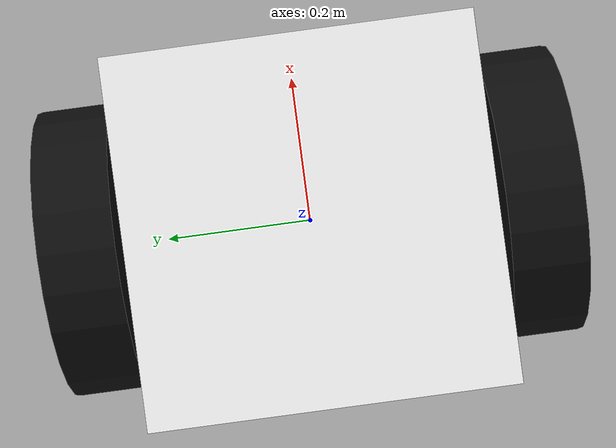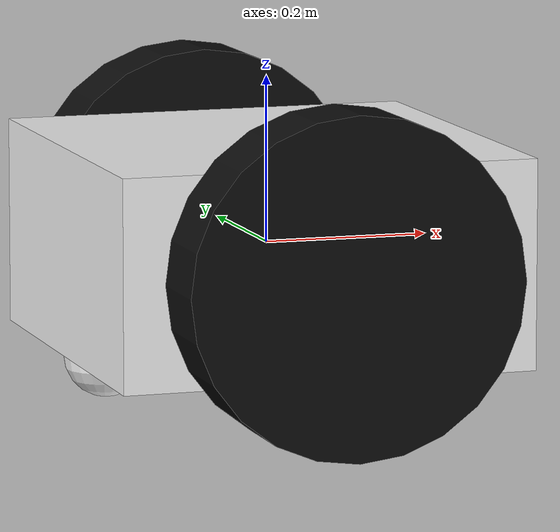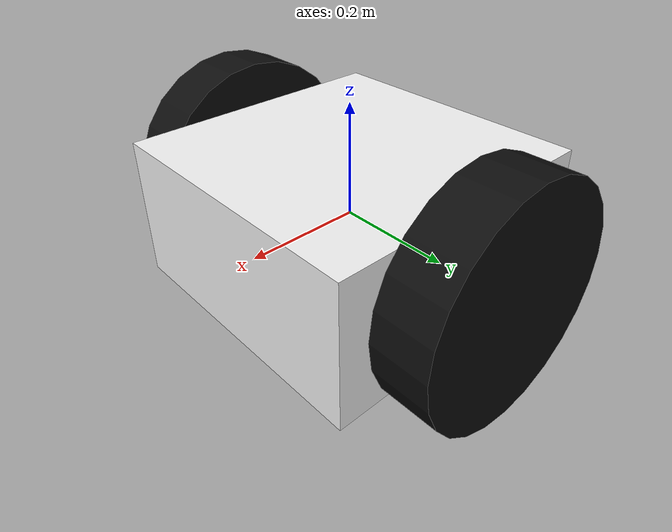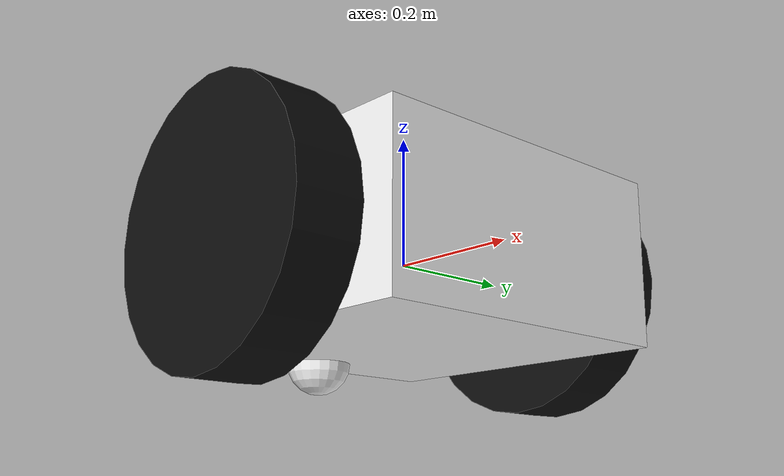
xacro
<?xml version="1.0"?>
<robot name="two_wheel" xmlns:xacro="http://ros.org/wiki/xacro">
<!-- Constants for robot dimensions -->
  <xacro:property name="base_link_size" value="0.5 0.5 0.25" />

  <xacro:include filename="$(find two_wheel_simulation)/gazebo/two_wheel.gazebo" />
  <!-- Base Link -->
  <link name="base_link">
    <visual>
      <origin xyz="0 0 0" rpy="0 0 0" />
      <geometry>
          <box size="${base_link_size}"/>
      </geometry>
      <material name="white">
        <color rgba="0.95 0.95 0.95 1"/>
      </material>
    </visual>
    <!-- Base collision, mass and inertia -->
    <collision>
      <origin xyz="0 0 0" rpy="0 0 0" />
      <geometry>
          <box size="${base_link_size}"/>
      </geometry>
    </collision>

    <!-- Caster -->
    <visual name="caster">
      <origin xyz="-0.2 0 -0.125" rpy="0 0 0" />
      <geometry>
        <sphere radius="0.05" />
      </geometry>
    </visual>
    <!-- Caster collision, mass and inertia -->
    <collision>
      <origin xyz="-0.2 0 -0.125" rpy="0 0 0" />
      <geometry>
        <sphere radius="0.05" />
      </geometry>
    </collision>
  </link>

    <!-- Inertia Dummy Link -->
  <link name="base_link_inertia">
    <inertial>
      <mass value="5"/>
      <inertia ixx="0.13" ixy="0.0" ixz="0.0" iyy="0.21" iyz="0.0" izz="0.13"/>
    </inertial>
  </link>

  <joint name="joint_inertia" type="fixed">
    <parent link="base_link"/>
    <origin xyz="0 0 0" rpy="0 0 0"/>
    <child link="base_link_inertia"/>
  </joint>

  <!-- Right Wheel -->
  <link name="right_wheel">
    <visual>
      <origin xyz="0 0 0" rpy="1.570795 0 0" />
      <geometry>
          <cylinder length="0.1" radius="0.2" />
      </geometry>
      <material name="black">
        <color rgba="0.05 0.05 0.05 1"/>
      </material>
    </visual>
    <!-- Right Wheel collision, mass and inertia -->
    <collision>
      <origin xyz="0 0 0" rpy="1.570795 0 0" />
      <geometry>
          <cylinder length="0.1" radius="0.2" />
      </geometry>
    </collision>
    <inertial>
      <mass value="0.5"/>
      <inertia ixx="0.01" ixy="0.0" ixz="0.0" iyy="0.005" iyz="0.0" izz="0.005"/>
    </inertial>

  </link>

  <!-- Right Wheel joint -->
  <joint name="joint_right_wheel" type="continuous">
    <parent link="base_link"/>
    <child link="right_wheel"/>
    <origin xyz="0 -0.30 0" rpy="0 0 0" />
    <axis xyz="0 1 0" />
  </joint>

  <!-- Left Wheel -->
  <link name="left_wheel">
    <visual>
      <origin xyz="0 0 0" rpy="1.570795 0 0" />
      <geometry>
          <cylinder length="0.1" radius="0.2" />
      </geometry>
      <material name="black" />
    </visual>
    <!-- Left Wheel collision, mass and inertia -->
    <collision>
      <origin xyz="0 0 0" rpy="1.570795 0 0" />
      <geometry>
          <cylinder length="0.1" radius="0.2" />
      </geometry>
    </collision>
    <inertial>
      <mass value="0.5"/>
      <inertia ixx="0.01" ixy="0.0" ixz="0.0" iyy="0.005" iyz="0.0" izz="0.005"/>
    </inertial>
  </link>

  <!-- Left Wheel joint -->
  <joint name="joint_left_wheel" type="continuous">
    <parent link="base_link"/>
    <child link="left_wheel"/>
    <origin xyz="0 0.30 0" rpy="0 0 0" />
    <axis xyz="0 1 0" />
  </joint>

</robot>
